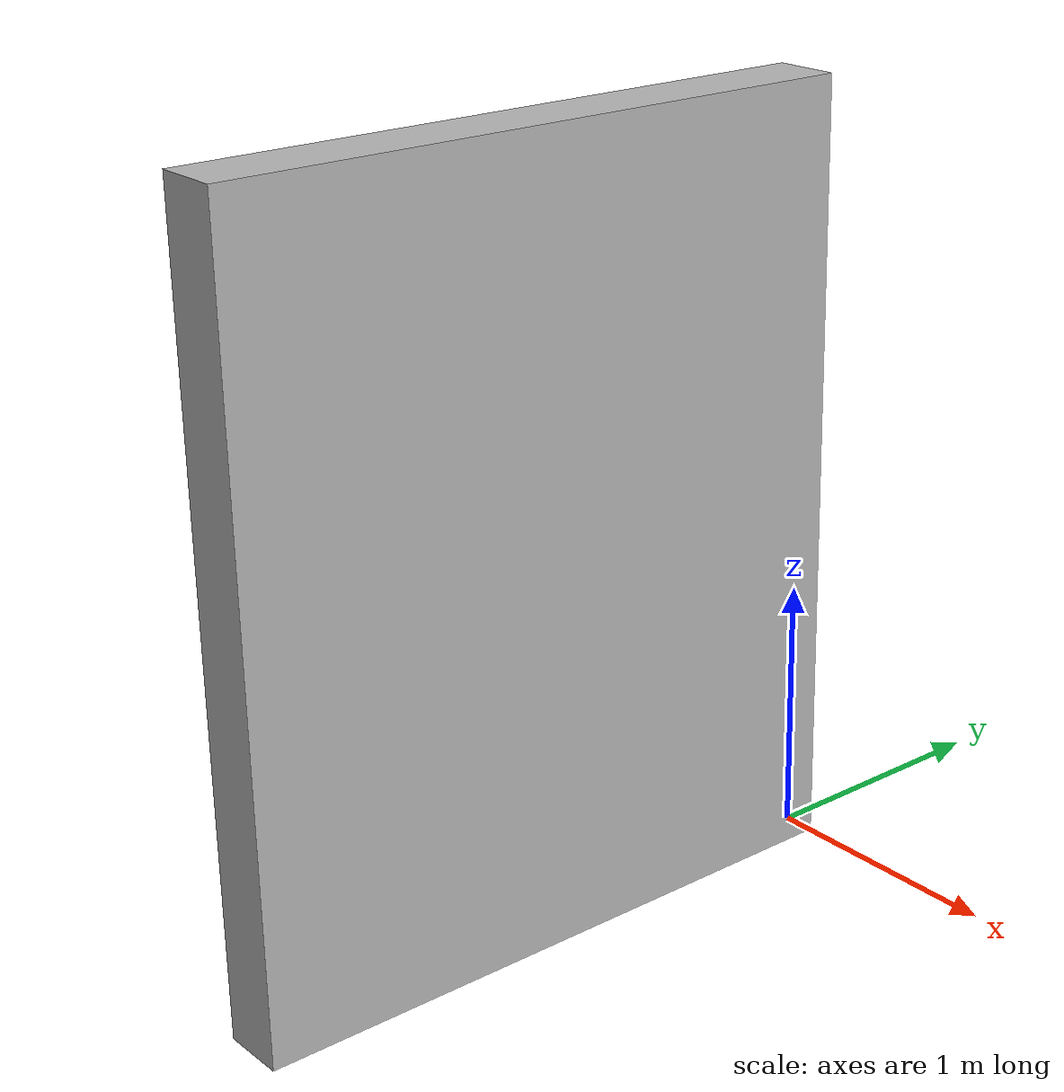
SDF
<sdf version="1.5">
  <model name="Robot">
    <link name="Robot">
      <visual name="visual_Wall.014">
        <pose>0.0 0.0 0.0 0.0 0.0 -1.57</pose>
        <geometry>
          <mesh>
            <uri>package://underactuated/models/uav_environment/half_wall_horizontal.obj</uri>
          </mesh>
        </geometry>
      </visual>
      <collision name="collision_Wall.014">
        <pose>0.0 -1.25 1.5 0.0 0.0 0.0</pose>
        <geometry>
          <box>
            <size>0.25 2.5 3.0</size>
          </box>
        </geometry>
      </collision>
    </link>
    <frame name="frame_BesideHalfWall">
      <pose>0.0 1.25 1.5 0.0 0.0 0.0</pose>
    </frame>
  </model>
</sdf>
